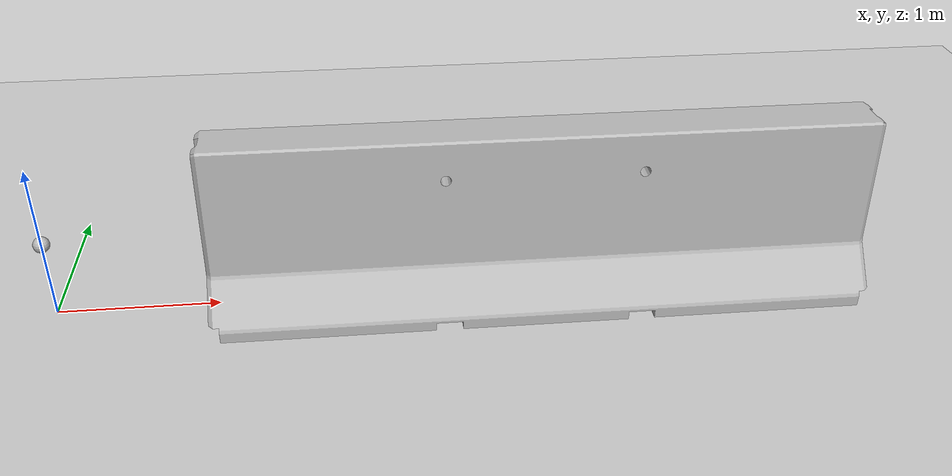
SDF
<?xml version="1.0" ?>
<sdf version="1.5">
  <world name="default">
    <!-- A global light source -->
    <light type="directional" name="sun">
      <cast_shadows>true</cast_shadows>
      <pose>0 0 10 0 0 0</pose>
      <diffuse>0.8 0.8 0.8 1</diffuse>
      <specular>0.2 0.2 0.2 1</specular>
      <direction>-0.5 0.1 -0.9</direction>
    </light>
    <!-- A ground plane -->
    <model name="ground_plane">
      <static>true</static>
      <link name="link">
        <collision name="collision">
          <geometry><plane><normal>0 0 1</normal><size>100 100</size></plane></geometry>
        </collision>
        <visual name="visual">
          <geometry><plane><normal>0 0 1</normal><size>100 100</size></plane></geometry>
        </visual>
      </link>
    </model>
    <include>
      <uri>model://asphalt_plane</uri>
    </include>

    <!-- Only one ROS interface plugin is required per world, as any other plugin can connect a Gazebo
         topic to a ROS topic (or vise versa). -->
    <plugin name="ros_interface_plugin" filename="librotors_gazebo_ros_interface_plugin.so"/>

    <physics name='default_physics' default='0' type='ode'>
      <gravity>0 0 -9.8066</gravity>
      <ode>
        <solver>
          <type>quick</type>
          <iters>10</iters>
          <sor>1.3</sor>
          <use_dynamic_moi_rescaling>0</use_dynamic_moi_rescaling>
        </solver>
        <constraints>
          <cfm>0</cfm>
          <erp>0.2</erp>
          <contact_max_correcting_vel>100</contact_max_correcting_vel>
          <contact_surface_layer>0.001</contact_surface_layer>
        </constraints>
      </ode>
      <max_step_size>0.002</max_step_size>
      <real_time_factor>1</real_time_factor>
      <real_time_update_rate>500</real_time_update_rate>
      <magnetic_field>6e-06 2.3e-05 -4.2e-05</magnetic_field>
    </physics>

    <model name="jersey_barrier">
      <static>true</static>
      <pose>3 0 0 0 0 0</pose>
      <link name="link">
        <visual name="visual">
          <geometry>
            <mesh><uri>model://jersey_barrier/meshes/jersey_barrier.dae</uri></mesh>
          </geometry>
        </visual>
        <collision name="collision">
          <geometry>
            <mesh><uri>model://jersey_barrier/meshes/jersey_barrier.dae</uri></mesh>
          </geometry>
        </collision>
      </link>
    </model>

    <model name="test_radar_sensor">
      <static>true</static>
      <pose>0 0 0.5 0 0 0</pose>
      <link name="radar_link">
        <visual name="v"><geometry><sphere><radius>0.05</radius></sphere></geometry></visual>
      </link>
      <plugin filename="libradar_sensor_system.so" name="radarays_gz2::RadarSensorSystem">
        <mesh_path>sim_worlds/darpa_subt_worlds/worlds/models/jersey_barrier/meshes/jersey_barrier.dae</mesh_path>
      </plugin>
    </model>

</world>
</sdf>
